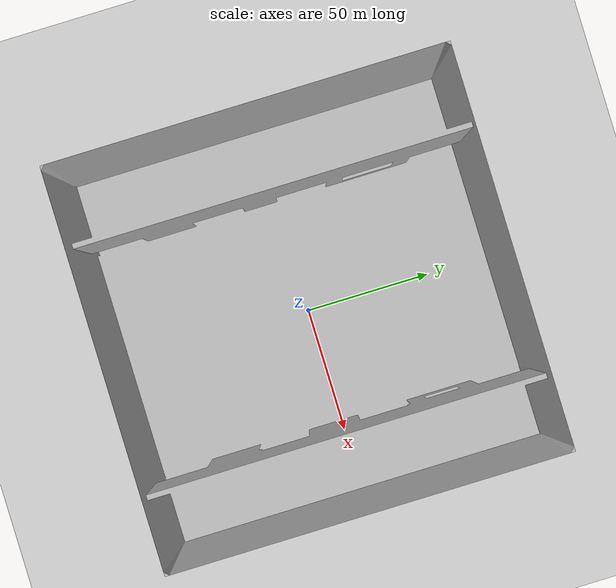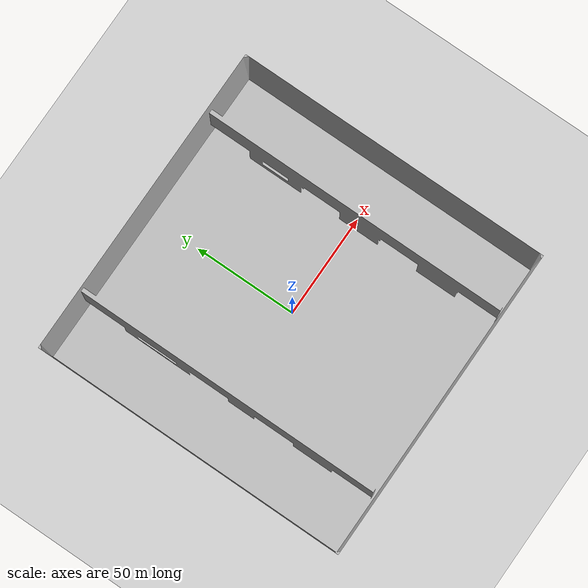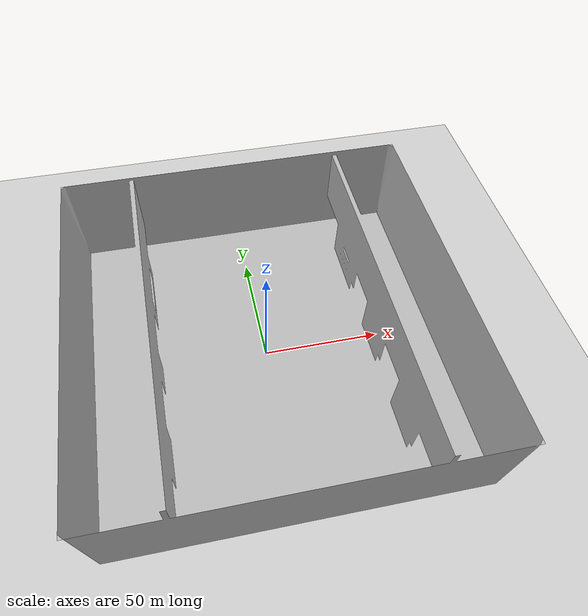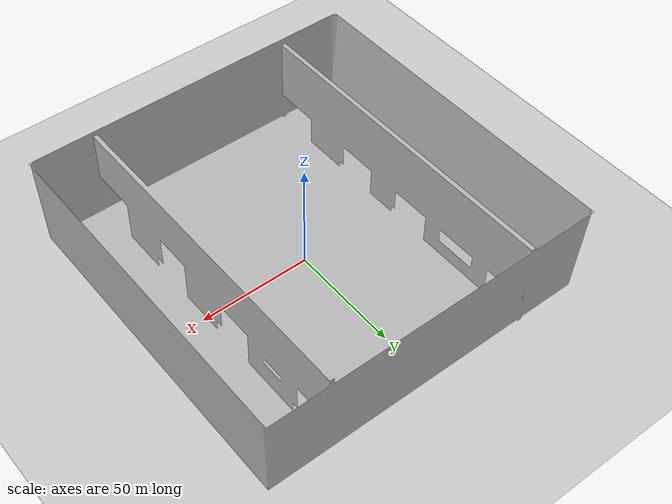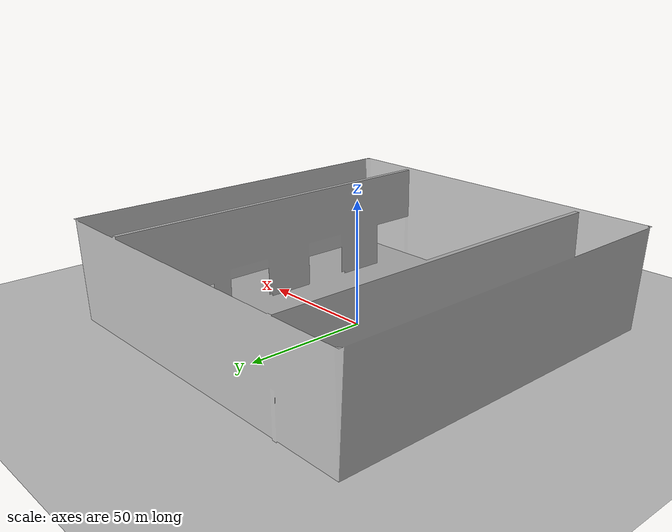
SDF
<?xml version="1.0" ?>
<sdf version="1.10">
  <world name="empty">
    <physics name="1ms" type="ignored">
      <max_step_size>0.001</max_step_size>
      <real_time_factor>1</real_time_factor>
      <real_time_update_rate>1000</real_time_update_rate>
    </physics>

    <plugin name="gz::sim::systems::Physics" filename="gz-sim-physics-system"/>
    <plugin name="gz::sim::systems::UserCommands" filename="gz-sim-user-commands-system"/>
    <plugin name="gz::sim::systems::SceneBroadcaster" filename="gz-sim-scene-broadcaster-system"/>
    <plugin name="gz::sim::systems::Sensors" filename="gz-sim-sensors-system">
      <render_engine>ogre2</render_engine>
    </plugin>
    <plugin name="gz::sim::systems::Contact" filename="gz-sim-contact-system"/>

    <gravity>0 0 -9.8</gravity>
    <magnetic_field>5.5645e-06 2.28758e-05 -4.23884e-05</magnetic_field>
    <atmosphere type="adiabatic"/>

    <scene>
      <ambient>0.4 0.4 0.4 1</ambient>
      <background>0.7 0.7 0.7 1</background>
      <shadows>true</shadows>
    </scene>

    <model name="ground_plane">
      <static>true</static>
      <link name="link">
        <collision name="collision">
          <geometry>
            <plane>
              <normal>0 0 1</normal>
              <size>100 100</size>
            </plane>
          </geometry>
          <surface>
            <friction>
              <ode/>
            </friction>
            <bounce/>
            <contact/>
          </surface>
        </collision>
        <visual name="visual">
          <geometry>
            <plane>
              <normal>0 0 1</normal>
              <size>100 100</size>
            </plane>
          </geometry>
          <material>
            <ambient>0.8 0.8 0.8 1</ambient>
            <diffuse>0.8 0.8 0.8 1</diffuse>
            <specular>0.8 0.8 0.8 1</specular>
          </material>
        </visual>
        <pose>0 0 0 0 0 0</pose>
        <inertial>
          <pose>0 0 0 0 0 0</pose>
          <mass>1</mass>
          <inertia>
            <ixx>1</ixx>
            <ixy>0</ixy>
            <ixz>0</ixz>
            <iyy>1</iyy>
            <iyz>0</iyz>
            <izz>1</izz>
          </inertia>
        </inertial>
        <enable_wind>false</enable_wind>
      </link>
      <pose>0 0 0 0 0 0</pose>
      <self_collide>false</self_collide>
    </model>

    <include>
      <uri>file:///home/ruben/Documents/ProjetoFinal/roboauto/models/mundo_realista/model.sdf</uri>
      <name>meu_modelo</name>
      <pose>0 0 0 0 0 0</pose>
    </include>

    <light name="sun" type="directional">
      <pose>0 0 10 0 0 0</pose>
      <cast_shadows>true</cast_shadows>
      <intensity>1</intensity>
      <direction>-0.5 0.1 -0.9</direction>
      <diffuse>0.8 0.8 0.8 1</diffuse>
      <specular>0.2 0.2 0.2 1</specular>
      <attenuation>
        <range>1000</range>
        <linear>0.01</linear>
        <constant>0.9</constant>
        <quadratic>0.001</quadratic>
      </attenuation>
      <spot>
        <inner_angle>0</inner_angle>
        <outer_angle>0</outer_angle>
        <falloff>0</falloff>
      </spot>
    </light>

  </world>
</sdf>

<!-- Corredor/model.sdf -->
<sdf version="1.5">
  <model name="terrain_1">
    <pose>0 0 0 0 0 0</pose>
    <static>true</static>
    <link name="body">
      <visual name="visual">
        <geometry>
          <mesh><uri>model:///home/ruben/Documents/Projeto Final/veiculo_terrestre/meshes/Corredor/media/novo_corredor.dae</uri></mesh>
        </geometry>
    <material>
          <script>
            <uri>model:///home/ruben/Documents/Projeto Final/veiculo_terrestre/meshes/Corredor/media/scripts</uri>
            <uri>model:///home/ruben/Documents/Projeto Final/veiculo_terrestre/meshes/Corredor/media/Textures</uri>
            <name>RepeatedGrass/Diffuse</name>
          </script>
        </material>
      </visual>
      <collision name="collision">
        <geometry>
          <mesh><uri>model:///home/ruben/Documents/Projeto Final/veiculo_terrestre/meshes//Corredor/media/novo_corredor.dae</uri></mesh>
        </geometry>
      </collision>
    </link>
  </model>
</sdf>
